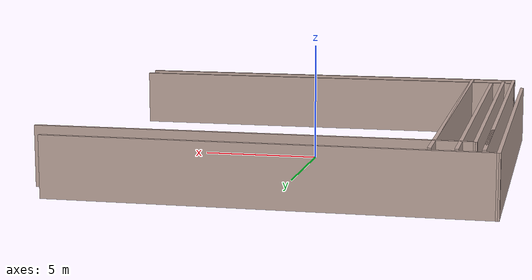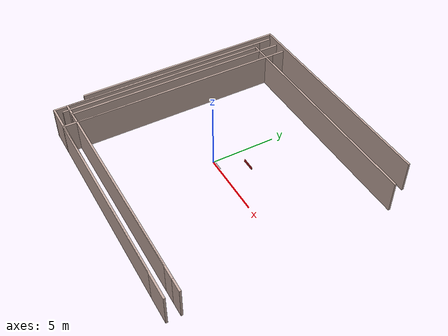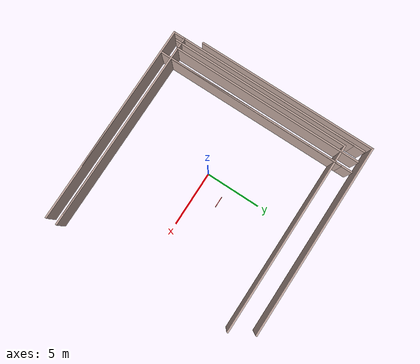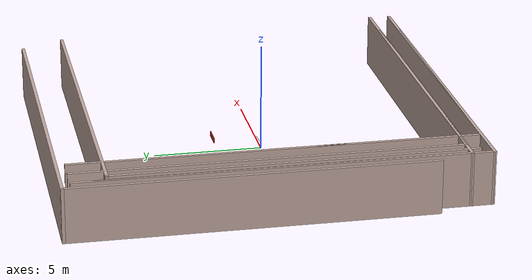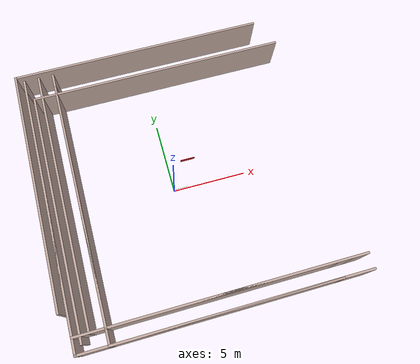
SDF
<?xml version="1.0" ?>
<sdf version="1.7">
    <model name="labyrinth">

			<include><name>01v</name><uri>model://wall</uri><pose>0 1 0 0 0 1.5707963267948966</pose></include>

			<include><name>02h</name><uri>model://wall</uri><pose>0 2 0 0 0 0</pose></include>

			<include><name>00h</name><uri>model://wall_White</uri><pose>0 0 0 0 0 0</pose></include>

			<include><name>00v</name><uri>model://wall</uri><pose>0 0 0 0 0 1.5707963267948966</pose></include>

			<include><name>11v</name><uri>model://wall</uri><pose>1 1 0 0 0 1.5707963267948966</pose></include>

			<include><name>12h</name><uri>model://wall_Red</uri><pose>1 2 0 0 0 0</pose></include>

			<include><name>21v</name><uri>model://wall</uri><pose>2 1 0 0 0 1.5707963267948966</pose></include>

			<include><name>10h</name><uri>model://wall</uri><pose>1 0 0 0 0 0</pose></include>

			<include><name>20v</name><uri>model://wall</uri><pose>2 0 0 0 0 1.5707963267948966</pose></include>

	</model>
</sdf>

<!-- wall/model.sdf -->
<sdf version='1.6'>
  <model name='wall'>
    <pose frame=''>-1.26581 1.80502 0 0 -0 0</pose>
    <link name='Wall_0'>
      <collision name='Wall_0_Collision'>
        <geometry>
          <box>
            <size>16.5 0.15 2.5</size>
          </box>
        </geometry>
        <pose frame=''>0 0 1.25 0 -0 0</pose>
      </collision>
      <visual name='Wall_0_Visual'>
        <pose frame=''>0 0 1.25 0 -0 0</pose>
        <geometry>
          <box>
            <size>16.5 0.15 2.5</size>
          </box>
        </geometry>
        <material>
          <script>
            <uri>file://media/materials/scripts/gazebo.material</uri>
            <name>Gazebo/Grey</name>
          </script>
          <ambient>0.760784 0.662745 0.627451 1</ambient>
        </material>
        <meta>
          <layer>0</layer>
        </meta>
      </visual>
      <pose frame=''>-8.71419 -1.8e-05 0 0 0 -1.5708</pose>
    </link>
    <link name='Wall_2'>
      <collision name='Wall_2_Collision'>
        <geometry>
          <box>
            <size>17.5784 0.15 2.5</size>
          </box>
        </geometry>
        <pose frame=''>0 0 1.25 0 -0 0</pose>
      </collision>
      <visual name='Wall_2_Visual'>
        <pose frame=''>0 0 1.25 0 -0 0</pose>
        <geometry>
          <box>
            <size>17.5784 0.15 2.5</size>
          </box>
        </geometry>
        <material>
          <script>
            <uri>file://media/materials/scripts/gazebo.material</uri>
            <name>Gazebo/Grey</name>
          </script>
          <ambient>0.760784 0.662745 0.627451 1</ambient>
        </material>
        <meta>
          <layer>0</layer>
        </meta>
      </visual>
      <pose frame=''>0 8.17066 0 0 0 -0.000496</pose>
    </link>
    <static>1</static>
  </model>
</sdf>

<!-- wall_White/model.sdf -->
<sdf version="1.7">
	<model name="wall_White">
		<link name="link">
			<visual name="visual">

				<pose>0.5 0.025 0.1 0 0 0</pose>

				<geometry>
					<box>
						<size>1 0.05 0.2</size>
					</box>
				</geometry>

				<material>
					<script>
						<uri>file://media/materials/scripts/gazebo.material</uri>
						<name>Gazebo/White</name>
					</script>
				</material>
			</visual>
			<collision name="collision">

				<pose>0.5 0.025 0.1 0 0 0</pose>

				<geometry>
					<box>
						<size>1 0.05 0.2</size>
					</box>
				</geometry>

				<laser_retro>3</laser_retro>
			</collision>
		</link>
	</model>
</sdf>

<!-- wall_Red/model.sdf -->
<sdf version="1.7">
	<model name="wall_Red">
		<link name="link">
			<visual name="visual">

				<pose>0.5 0.025 0.1 0 0 0</pose>

				<geometry>
					<box>
						<size>1 0.05 0.2</size>
					</box>
				</geometry>

				<material>
					<script>
						<uri>file://media/materials/scripts/gazebo.material</uri>
						<name>Gazebo/Red</name>
					</script>
				</material>
			</visual>
			<collision name="collision">

				<pose>0.5 0.025 0.1 0 0 0</pose>

				<geometry>
					<box>
						<size>1 0.05 0.2</size>
					</box>
				</geometry>

				<laser_retro>2</laser_retro>
			</collision>
		</link>
	</model>
</sdf>
